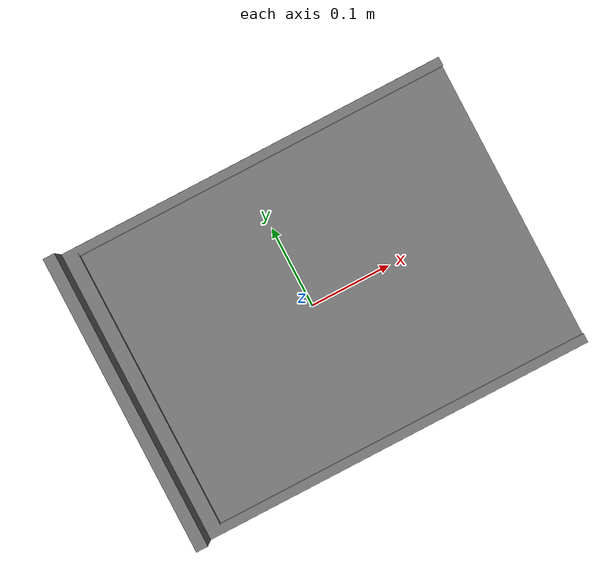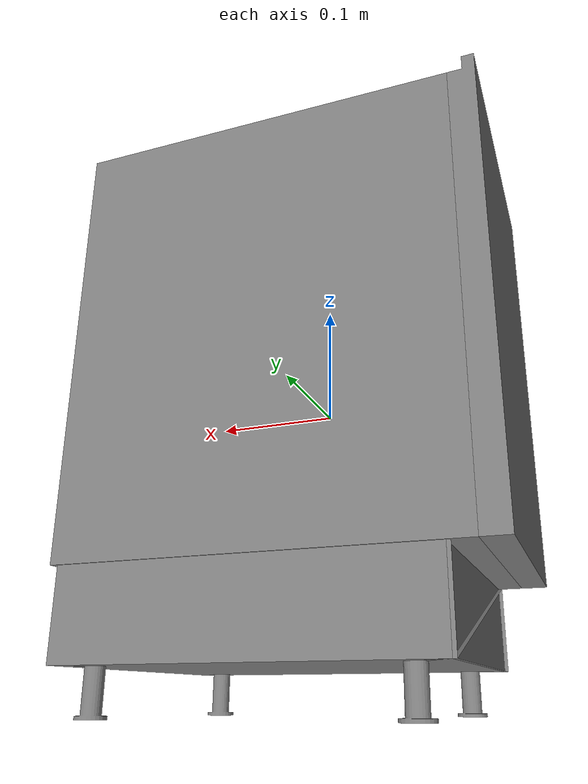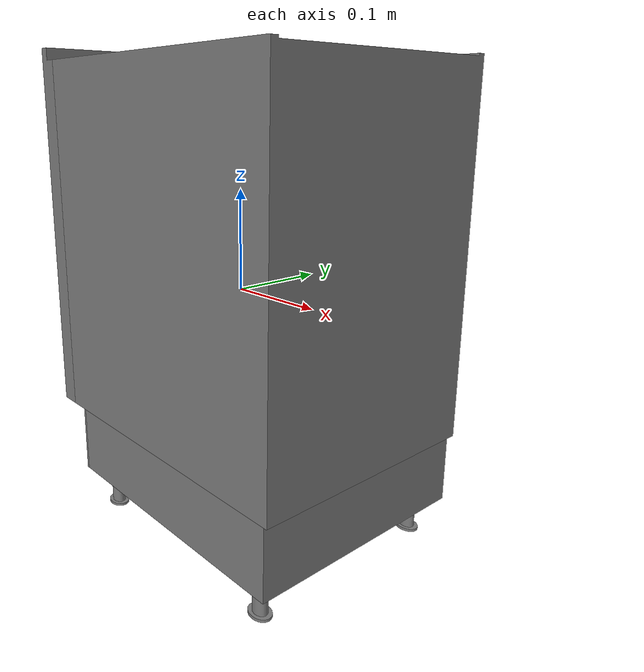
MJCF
<mujoco model="partnet_785d6d568e0c7ea5575f4e5007488531">
    <compiler angle="radian" />
    <option gravity="0 0 0" />
    <size njmax="500" nconmax="100" />
    <asset>
        <mesh name="new-5" file="new-5.stl" scale="0.3 0.3 0.3" />
        <mesh name="new-8" file="new-8.stl" scale="0.3 0.3 0.3" />
        <mesh name="new-4" file="new-4.stl" scale="0.3 0.3 0.3" />
        <mesh name="new-3" file="new-3.stl" scale="0.3 0.3 0.3" />
        <mesh name="new-2" file="new-2.stl" scale="0.3 0.3 0.3" />
        <mesh name="new-1" file="new-1.stl" scale="0.3 0.3 0.3" />
        <mesh name="new-0" file="new-0.stl" scale="0.3 0.3 0.3" />
        <mesh name="new-7" file="new-7.stl" scale="0.3 0.3 0.3" />
    </asset>
    <worldbody>
    <body>
        <body name="object">
        <geom quat="0.5 0.5 -0.5 -0.5" type="mesh" group="0" mesh="new-8" />
        <geom quat="0.5 0.5 -0.5 -0.5" type="mesh" group="0" mesh="new-4" />
        <geom quat="0.5 0.5 -0.5 -0.5" type="mesh" group="0" mesh="new-3" />
        <geom quat="0.5 0.5 -0.5 -0.5" type="mesh" group="0" mesh="new-2" />
        <geom quat="0.5 0.5 -0.5 -0.5" type="mesh" group="0" mesh="new-1" />
        <geom quat="0.5 0.5 -0.5 -0.5" type="mesh" group="0" mesh="new-0" />
        <geom quat="0.5 0.5 -0.5 -0.5" type="mesh" group="0" mesh="new-7" />
        <body name="link_0" pos="-0.13125959999999998 -0.12221939999999999 -0.1337706" quat="0.5 0.5 -0.5 -0.5" gravcomp="1">
            <inertial pos="-0.12303 0.1663491 0.01665813" quat="0.497242 0.502516 -0.501348 0.498877" mass="68.7029" diaginertia="11.5805 7.63474 4.00435" />
            <joint name="joint_0" pos="0.0 0.0 0.0" axis="1 0 0" limited="true" range="0 1.5708" />
            <geom pos="-0.12221939999999999 0.1337706 -0.13125959999999998" type="mesh" group="0" mesh="new-5" />
        </body>
    </body>
        <site name="bottom_site" pos="0 0 -0.3" rgba="0 0 0 0" size="0.005" />
        <site name="top_site" pos="0 0 0.3" rgba="0 0 0 0" size="0.005" />
        <site name="horizontal_radius_site" pos="0.3 0 0" rgba="0 0 0 0" size="0.1" />
    </body>
    </worldbody>
</mujoco>
